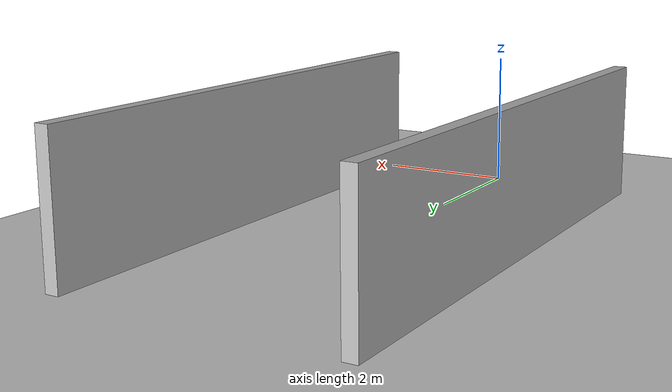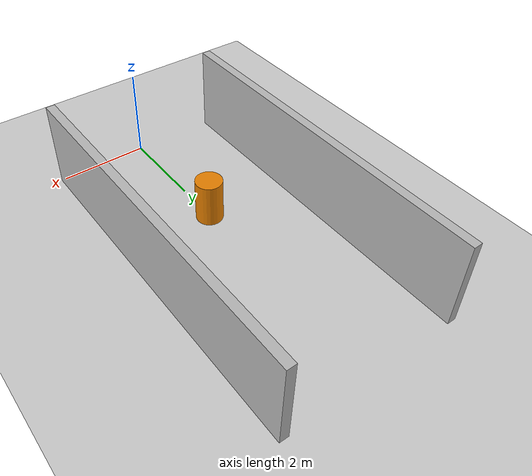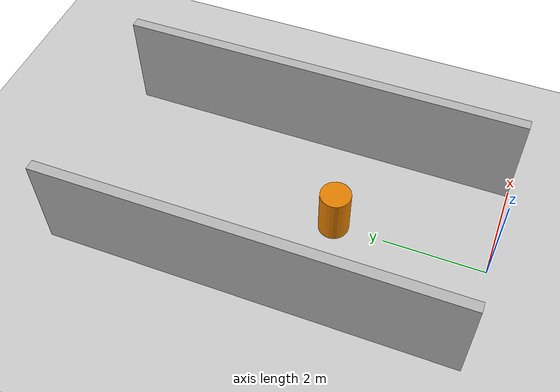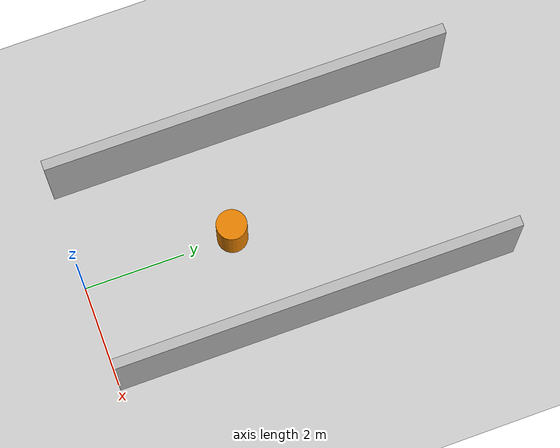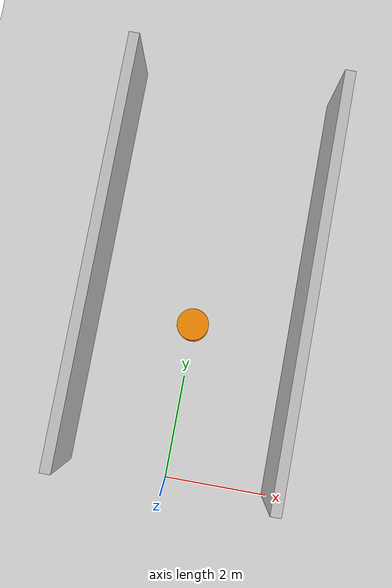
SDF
<?xml version="1.0" ?>
<sdf version="1.8">
  <world name="dynamic_obstacles">
    <physics name="1ms" type="ignored"><max_step_size>0.001</max_step_size><real_time_factor>1.0</real_time_factor></physics>
    <plugin filename="libignition-gazebo-physics-system.so" name="ignition::gazebo::systems::Physics"/>
    <plugin filename="libignition-gazebo-scene-broadcaster-system.so" name="ignition::gazebo::systems::SceneBroadcaster"/>
    <plugin filename="libignition-gazebo-user-commands-system.so" name="ignition::gazebo::systems::UserCommands"/>
    <plugin filename="libignition-gazebo-sensors-system.so" name="ignition::gazebo::systems::Sensors"><render_engine>ogre</render_engine></plugin>
    <plugin filename="libignition-gazebo-imu-system.so" name="ignition::gazebo::systems::Imu"/>

    <light type="directional" name="sun"><cast_shadows>true</cast_shadows><pose>0 0 10 0 0 0</pose><diffuse>0.8 0.8 0.8 1</diffuse><specular>0.2 0.2 0.2 1</specular><direction>-0.5 0.1 -0.9</direction></light>
    <model name="ground_plane"><static>true</static><link name="link"><collision name="c"><geometry><plane><normal>0 0 1</normal><size>40 40</size></plane></geometry></collision><visual name="v"><geometry><plane><normal>0 0 1</normal><size>40 40</size></plane></geometry><material><ambient>0.8 0.8 0.8 1</ambient><diffuse>0.8 0.8 0.8 1</diffuse></material></visual></link></model>

    <!-- Corridor with crossing lane -->
    <model name="lane_left"><static>true</static><pose>-2.0 4 1 0 0 0</pose><link name="l"><collision name="c"><geometry><box><size>0.2 8 2</size></box></geometry></collision><visual name="v"><geometry><box><size>0.2 8 2</size></box></geometry></visual></link></model>
    <model name="lane_right"><static>true</static><pose>2.0 4 1 0 0 0</pose><link name="l"><collision name="c"><geometry><box><size>0.2 8 2</size></box></geometry></collision><visual name="v"><geometry><box><size>0.2 8 2</size></box></geometry></visual></link></model>

    <!-- Dynamic Obstacle Cylinder -->
    <model name="dynamic_cylinder">
      <pose>0.0 3.0 0.5 0 0 0</pose>
      <link name="dyn_link">
        <inertial><mass>20.0</mass><inertia ixx="1" ixy="0" ixz="0" iyy="1" iyz="0" izz="1"/></inertial>
        <collision name="c"><geometry><cylinder><radius>0.3</radius><length>1.0</length></cylinder></geometry></collision>
        <visual name="v"><geometry><cylinder><radius>0.3</radius><length>1.0</length></cylinder></geometry><material><ambient>0.9 0.5 0.0 1</ambient><diffuse>0.9 0.5 0.0 1</diffuse></material></visual>
      </link>
    </model>
  </world>
</sdf>
